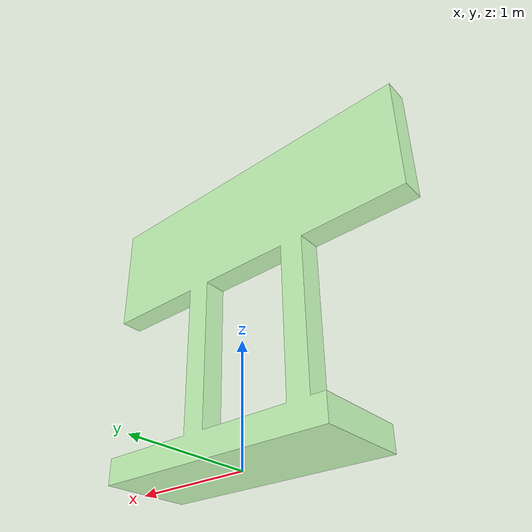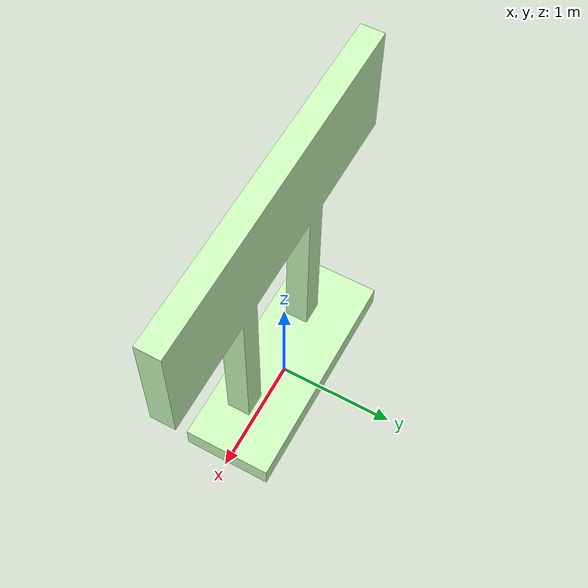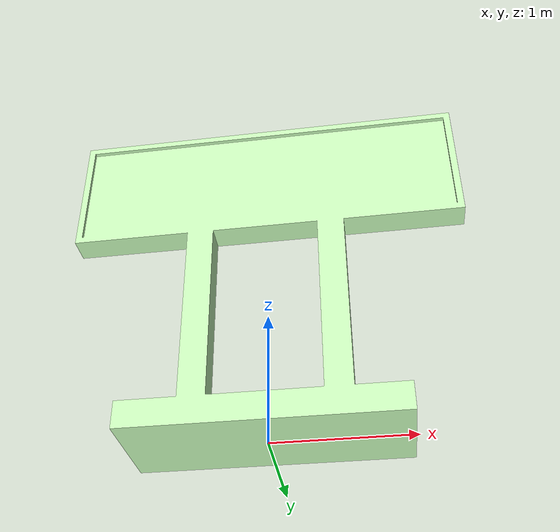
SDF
<?xml version='1.0' ?>
<sdf version="1.6">
    <model name="smart_board">
        <static>true</static>
        <link name="link">
            <collision name="collision">
                <pose>0 0 0 0 0 0</pose>
                <geometry>
                    <mesh>
                        <uri>smart_board.dae</uri>
                    </mesh>
                </geometry>
            </collision>
            <visual name="visual">
                <pose>0 0 0 0 0 0</pose>
                <geometry>
                    <mesh>
                        <uri>smart_board.dae</uri>
                    </mesh>
                </geometry>
            </visual>
        </link>
    </model>
</sdf>
